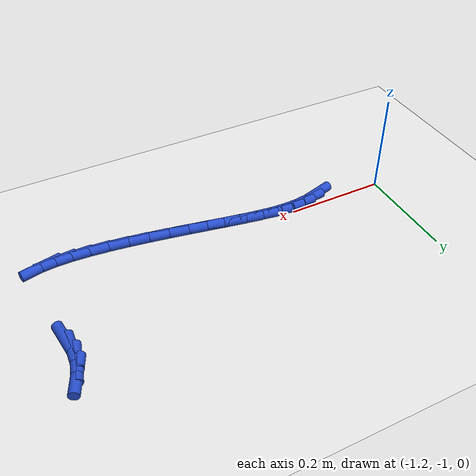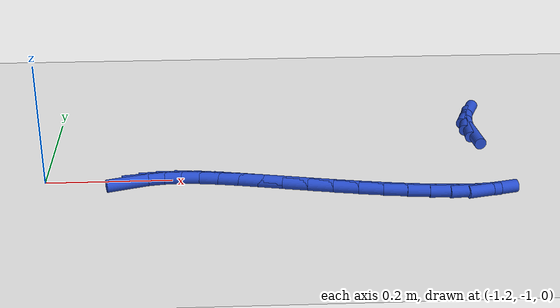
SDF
<sdf version="1.6">
 <world name="default">
  <model name="ground_plane">
   <static>1</static>
   <link name="link">
    <collision name="collision">
     <geometry><plane><normal>0 0 1</normal><size>100 100</size></plane></geometry>
     <surface><friction><ode><mu>100</mu><mu2>50</mu2></ode></friction></surface>
    </collision>
    <visual name="visual">
     <cast_shadows>0</cast_shadows>
     <geometry><plane><normal>0 0 1</normal><size>100 100</size></plane></geometry>
     <material>
      <script><uri>file://media/materials/scripts/gazebo.material</uri><name>Gazebo/WhiteGlow</name></script>
     </material>
    </visual>
   </link>
  </model>
  <model name="line">
   <link name="link_196">
    <pose>-1.0619575704434498 -1.0200653037756726 0.01 0 1.57 0.28190419514167314</pose>
    <collision name="collision">
     <geometry><cylinder><radius>0.01</radius><length>0.08</length></cylinder></geometry>
    </collision>
    <visual name="visual">
     <material>
      <script><name>Gazebo/Blue</name><uri>file://media/materials/scripts/gazebo.material</uri></script>
     </material>
     <geometry><cylinder><radius>0.01</radius><length>0.08</length></cylinder></geometry>
    </visual>
   </link>
   <link name="link_197">
    <pose>-1.0376114635319704 -1.0130142547498693 0.01 0 1.57 0.146598872988282</pose>
    <collision name="collision">
     <geometry><cylinder><radius>0.01</radius><length>0.08</length></cylinder></geometry>
    </collision>
    <visual name="visual">
     <material>
      <script><name>Gazebo/Blue</name><uri>file://media/materials/scripts/gazebo.material</uri></script>
     </material>
     <geometry><cylinder><radius>0.01</radius><length>0.08</length></cylinder></geometry>
    </visual>
   </link>
   <link name="link_198">
    <pose>-1.0120838552460287 -1.0092448946498493 0.01 0 1.57 0.03452943303493783</pose>
    <collision name="collision">
     <geometry><cylinder><radius>0.01</radius><length>0.08</length></cylinder></geometry>
    </collision>
    <visual name="visual">
     <material>
      <script><name>Gazebo/Blue</name><uri>file://media/materials/scripts/gazebo.material</uri></script>
     </material>
     <geometry><cylinder><radius>0.01</radius><length>0.08</length></cylinder></geometry>
    </visual>
   </link>
   <link name="link_199">
    <pose>-0.9852055045816862 -1.0083164314145732 0.01 0 1.57 -0.05177509147800177</pose>
    <collision name="collision">
     <geometry><cylinder><radius>0.01</radius><length>0.08</length></cylinder></geometry>
    </collision>
    <visual name="visual">
     <material>
      <script><name>Gazebo/Blue</name><uri>file://media/materials/scripts/gazebo.material</uri></script>
     </material>
     <geometry><cylinder><radius>0.01</radius><length>0.08</length></cylinder></geometry>
    </visual>
   </link>
   <link name="link_200">
    <pose>-0.9568071705350071 -1.0097880729830024 0.01 0 1.57 -0.11354187989510443</pose>
    <collision name="collision">
     <geometry><cylinder><radius>0.01</radius><length>0.08</length></cylinder></geometry>
    </collision>
    <visual name="visual">
     <material>
      <script><name>Gazebo/Blue</name><uri>file://media/materials/scripts/gazebo.material</uri></script>
     </material>
     <geometry><cylinder><radius>0.01</radius><length>0.08</length></cylinder></geometry>
    </visual>
   </link>
   <link name="link_201">
    <pose>-0.9267196121020537 -1.0132190272940973 0.01 0 1.57 -0.1537103114555021</pose>
    <collision name="collision">
     <geometry><cylinder><radius>0.01</radius><length>0.08</length></cylinder></geometry>
    </collision>
    <visual name="visual">
     <material>
      <script><name>Gazebo/Blue</name><uri>file://media/materials/scripts/gazebo.material</uri></script>
     </material>
     <geometry><cylinder><radius>0.01</radius><length>0.08</length></cylinder></geometry>
    </visual>
   </link>
   <link name="link_202">
    <pose>-0.8947735882788895 -1.0181685022868197 0.01 0 1.57 -0.17558092768108083</pose>
    <collision name="collision">
     <geometry><cylinder><radius>0.01</radius><length>0.08</length></cylinder></geometry>
    </collision>
    <visual name="visual">
     <material>
      <script><name>Gazebo/Blue</name><uri>file://media/materials/scripts/gazebo.material</uri></script>
     </material>
     <geometry><cylinder><radius>0.01</radius><length>0.08</length></cylinder></geometry>
    </visual>
   </link>
   <link name="link_203">
    <pose>-0.8607998580615777 -1.0241957059001296 0.01 0 1.57 -0.18291387089208042</pose>
    <collision name="collision">
     <geometry><cylinder><radius>0.01</radius><length>0.08</length></cylinder></geometry>
    </collision>
    <visual name="visual">
     <material>
      <script><name>Gazebo/Blue</name><uri>file://media/materials/scripts/gazebo.material</uri></script>
     </material>
     <geometry><cylinder><radius>0.01</radius><length>0.08</length></cylinder></geometry>
    </visual>
   </link>
   <link name="link_204">
    <pose>-0.8247116880446925 -1.0308713494424389 0.01 0 1.57 -0.18251751926866894</pose>
    <collision name="collision">
     <geometry><cylinder><radius>0.01</radius><length>0.08</length></cylinder></geometry>
    </collision>
    <visual name="visual">
     <material>
      <script><name>Gazebo/Blue</name><uri>file://media/materials/scripts/gazebo.material</uri></script>
     </material>
     <geometry><cylinder><radius>0.01</radius><length>0.08</length></cylinder></geometry>
    </visual>
   </link>
   <link name="link_205">
    <pose>-0.7869542408374705 -1.0378403021963991 0.01 0 1.57 -0.17703966069939633</pose>
    <collision name="collision">
     <geometry><cylinder><radius>0.01</radius><length>0.08</length></cylinder></geometry>
    </collision>
    <visual name="visual">
     <material>
      <script><name>Gazebo/Blue</name><uri>file://media/materials/scripts/gazebo.material</uri></script>
     </material>
     <geometry><cylinder><radius>0.01</radius><length>0.08</length></cylinder></geometry>
    </visual>
   </link>
   <link name="link_206">
    <pose>-0.7481836808299795 -1.0447768517222913 0.01 0 1.57 -0.16657434124633944</pose>
    <collision name="collision">
     <geometry><cylinder><radius>0.01</radius><length>0.08</length></cylinder></geometry>
    </collision>
    <visual name="visual">
     <material>
      <script><name>Gazebo/Blue</name><uri>file://media/materials/scripts/gazebo.material</uri></script>
     </material>
     <geometry><cylinder><radius>0.01</radius><length>0.08</length></cylinder></geometry>
    </visual>
   </link>
   <link name="link_207">
    <pose>-0.7090567037071182 -1.0513553596545524 0.01 0 1.57 -0.15067341447636057</pose>
    <collision name="collision">
     <geometry><cylinder><radius>0.01</radius><length>0.08</length></cylinder></geometry>
    </collision>
    <visual name="visual">
     <material>
      <script><name>Gazebo/Blue</name><uri>file://media/materials/scripts/gazebo.material</uri></script>
     </material>
     <geometry><cylinder><radius>0.01</radius><length>0.08</length></cylinder></geometry>
    </visual>
   </link>
   <link name="link_208">
    <pose>-0.6702300051537844 -1.0572501876276188 0.01 0 1.57 -0.12829968515049187</pose>
    <collision name="collision">
     <geometry><cylinder><radius>0.01</radius><length>0.08</length></cylinder></geometry>
    </collision>
    <visual name="visual">
     <material>
      <script><name>Gazebo/Blue</name><uri>file://media/materials/scripts/gazebo.material</uri></script>
     </material>
     <geometry><cylinder><radius>0.01</radius><length>0.08</length></cylinder></geometry>
    </visual>
   </link>
   <link name="link_209">
    <pose>-0.6323602808548765 -1.0621356972759264 0.01 0 1.57 -0.09761866347024839</pose>
    <collision name="collision">
     <geometry><cylinder><radius>0.01</radius><length>0.08</length></cylinder></geometry>
    </collision>
    <visual name="visual">
     <material>
      <script><name>Gazebo/Blue</name><uri>file://media/materials/scripts/gazebo.material</uri></script>
     </material>
     <geometry><cylinder><radius>0.01</radius><length>0.08</length></cylinder></geometry>
    </visual>
   </link>
   <link name="link_210">
    <pose>-0.5961042264952928 -1.0656862502339128 0.01 0 1.57 -0.05555318538462061</pose>
    <collision name="collision">
     <geometry><cylinder><radius>0.01</radius><length>0.08</length></cylinder></geometry>
    </collision>
    <visual name="visual">
     <material>
      <script><name>Gazebo/Blue</name><uri>file://media/materials/scripts/gazebo.material</uri></script>
     </material>
     <geometry><cylinder><radius>0.01</radius><length>0.08</length></cylinder></geometry>
    </visual>
   </link>
   <link name="link_211">
    <pose>-0.562118537759931 -1.0675762081360134 0.01 0 1.57 0.0030997896225715563</pose>
    <collision name="collision">
     <geometry><cylinder><radius>0.01</radius><length>0.08</length></cylinder></geometry>
    </collision>
    <visual name="visual">
     <material>
      <script><name>Gazebo/Blue</name><uri>file://media/materials/scripts/gazebo.material</uri></script>
     </material>
     <geometry><cylinder><radius>0.01</radius><length>0.08</length></cylinder></geometry>
    </visual>
   </link>
   <link name="link_212">
    <pose>-0.5310599103336899 -1.0674799326166653 0.01 0 1.57 0.08742566516934547</pose>
    <collision name="collision">
     <geometry><cylinder><radius>0.01</radius><length>0.08</length></cylinder></geometry>
    </collision>
    <visual name="visual">
     <material>
      <script><name>Gazebo/Blue</name><uri>file://media/materials/scripts/gazebo.material</uri></script>
     </material>
     <geometry><cylinder><radius>0.01</radius><length>0.08</length></cylinder></geometry>
    </visual>
   </link>
   <link name="link_213">
    <pose>-0.5035850399014666 -1.0650717853103047 0.01 0 1.57 0.21384273704330822</pose>
    <collision name="collision">
     <geometry><cylinder><radius>0.01</radius><length>0.08</length></cylinder></geometry>
    </collision>
    <visual name="visual">
     <material>
      <script><name>Gazebo/Blue</name><uri>file://media/materials/scripts/gazebo.material</uri></script>
     </material>
     <geometry><cylinder><radius>0.01</radius><length>0.08</length></cylinder></geometry>
    </visual>
   </link>
   <link name="link_223">
    <pose>-0.4945843423940381 -0.8765521147126689 0.01 0 1.57 -1.453950188936574</pose>
    <collision name="collision">
     <geometry><cylinder><radius>0.01</radius><length>0.08</length></cylinder></geometry>
    </collision>
    <visual name="visual">
     <material>
      <script><name>Gazebo/Blue</name><uri>file://media/materials/scripts/gazebo.material</uri></script>
     </material>
     <geometry><cylinder><radius>0.01</radius><length>0.08</length></cylinder></geometry>
    </visual>
   </link>
   <link name="link_224">
    <pose>-0.4975889976308558 -0.8509546185248882 0.01 0 1.57 1.5014423505045762</pose>
    <collision name="collision">
     <geometry><cylinder><radius>0.01</radius><length>0.08</length></cylinder></geometry>
    </collision>
    <visual name="visual">
     <material>
      <script><name>Gazebo/Blue</name><uri>file://media/materials/scripts/gazebo.material</uri></script>
     </material>
     <geometry><cylinder><radius>0.01</radius><length>0.08</length></cylinder></geometry>
    </visual>
   </link>
   <link name="link_225">
    <pose>-0.4958963460674339 -0.8265877845933076 0.01 0 1.57 1.3184599540563267</pose>
    <collision name="collision">
     <geometry><cylinder><radius>0.01</radius><length>0.08</length></cylinder></geometry>
    </collision>
    <visual name="visual">
     <material>
      <script><name>Gazebo/Blue</name><uri>file://media/materials/scripts/gazebo.material</uri></script>
     </material>
     <geometry><cylinder><radius>0.01</radius><length>0.08</length></cylinder></geometry>
    </visual>
   </link>
   <link name="link_226">
    <pose>-0.48989967574667637 -0.8033297419143558 0.01 0 1.57 1.1522299315911047</pose>
    <collision name="collision">
     <geometry><cylinder><radius>0.01</radius><length>0.08</length></cylinder></geometry>
    </collision>
    <visual name="visual">
     <material>
      <script><name>Gazebo/Blue</name><uri>file://media/materials/scripts/gazebo.material</uri></script>
     </material>
     <geometry><cylinder><radius>0.01</radius><length>0.08</length></cylinder></geometry>
    </visual>
   </link>
  </model>
 </world>
</sdf>
